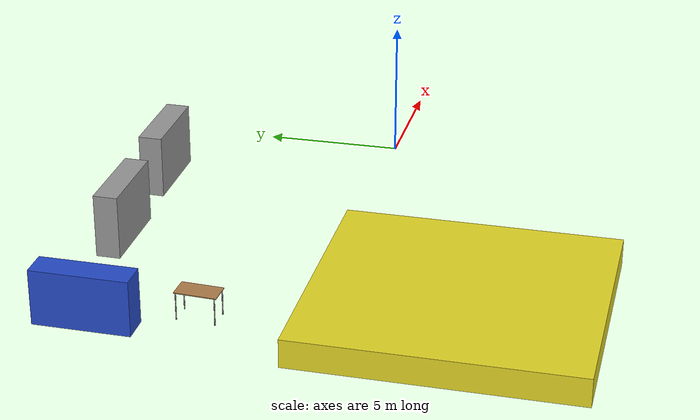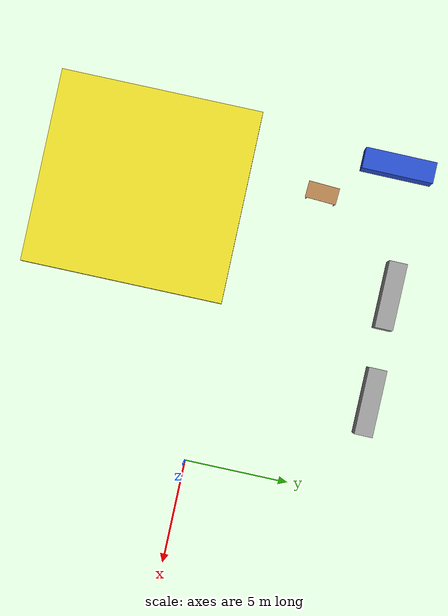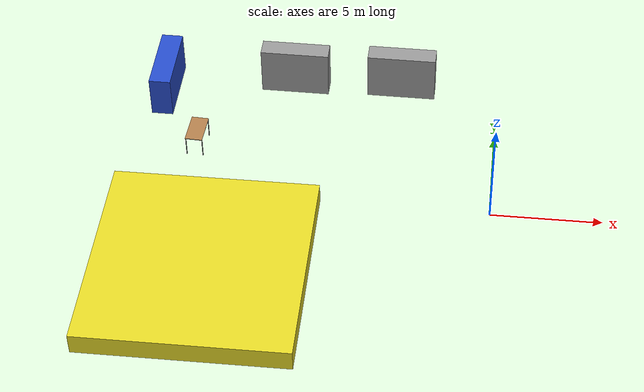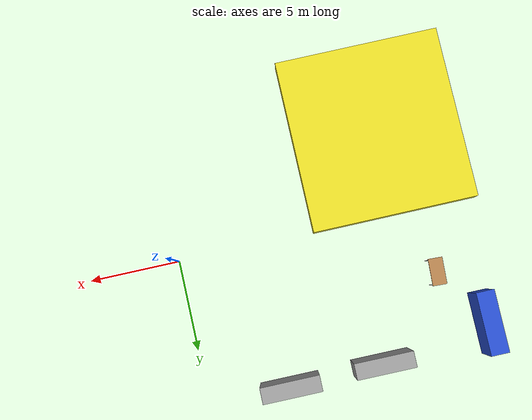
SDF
<sdf version="1.7">
 <world name="lab_arm_world">
  <model name="ground_plane">
   <static>1</static>
   <link name="link_ground_plane">
    <collision name="collision">
     <geometry><plane><normal>0 0 1</normal><size>10 10</size></plane></geometry>
    </collision>
   </link>
  </model>
  <model name="Table">
   <static>1</static>
   <link name="link">
    <collision name="surface">
     <pose>0 0 1 0 -0 0</pose>
     <geometry><box><size>1.5 0.8 0.03</size></box></geometry>
     <surface><friction><ode><mu>0.6</mu><mu2>0.6</mu2></ode></friction></surface>
    </collision>
    <visual name="visual1">
     <pose>0 0 1 0 -0 0</pose>
     <geometry><box><size>1.5 0.8 0.03</size></box></geometry>
     <material>
      <diffuse>1 1 1 1</diffuse>
      <script><uri>file://media/materials/scripts/gazebo.material</uri><name>Gazebo/Wood</name></script>
      <pbr>
       <metal>
        <albedo_map>https://fuel.ignitionrobotics.org/1.0/openrobotics/models/table/4/files/Table_Diffuse.jpg</albedo_map>
       </metal>
      </pbr>
     </material>
    </visual>
    <collision name="front_left_leg">
     <pose>0.68 0.38 0.5 0 -0 0</pose>
     <geometry><cylinder><radius>0.02</radius><length>1</length></cylinder></geometry>
    </collision>
    <visual name="front_left_leg">
     <pose>0.68 0.38 0.5 0 -0 0</pose>
     <geometry><cylinder><radius>0.02</radius><length>1</length></cylinder></geometry>
     <material>
      <diffuse>0.5 0.5 0.5 1</diffuse>
      <script><uri>file://media/materials/scripts/gazebo.material</uri><name>Gazebo/Grey</name></script>
     </material>
    </visual>
    <collision name="front_right_leg">
     <pose>0.68 -0.38 0.5 0 -0 0</pose>
     <geometry><cylinder><radius>0.02</radius><length>1</length></cylinder></geometry>
    </collision>
    <visual name="front_right_leg">
     <pose>0.68 -0.38 0.5 0 -0 0</pose>
     <geometry><cylinder><radius>0.02</radius><length>1</length></cylinder></geometry>
     <material>
      <diffuse>0.5 0.5 0.5 1</diffuse>
      <script><uri>file://media/materials/scripts/gazebo.material</uri><name>Gazebo/Grey</name></script>
     </material>
    </visual>
    <collision name="back_right_leg">
     <pose>-0.68 -0.38 0.5 0 -0 0</pose>
     <geometry><cylinder><radius>0.02</radius><length>1</length></cylinder></geometry>
    </collision>
    <visual name="back_right_leg">
     <pose>-0.68 -0.38 0.5 0 -0 0</pose>
     <geometry><cylinder><radius>0.02</radius><length>1</length></cylinder></geometry>
     <material>
      <diffuse>0.5 0.5 0.5 1</diffuse>
      <script><uri>file://media/materials/scripts/gazebo.material</uri><name>Gazebo/Grey</name></script>
     </material>
    </visual>
    <collision name="back_left_leg">
     <pose>-0.68 0.38 0.5 0 -0 0</pose>
     <geometry><cylinder><radius>0.02</radius><length>1</length></cylinder></geometry>
    </collision>
    <visual name="back_left_leg">
     <pose>-0.68 0.38 0.5 0 -0 0</pose>
     <geometry><cylinder><radius>0.02</radius><length>1</length></cylinder></geometry>
     <material>
      <diffuse>0.5 0.5 0.5 1</diffuse>
      <script><uri>file://media/materials/scripts/gazebo.material</uri><name>Gazebo/Grey</name></script>
     </material>
    </visual>
   </link>
   <pose>-13.7971 3.69248 -0.41273 0 -0 1.51826</pose>
  </model>
  <model name="working_area">
   <link name="link">
    <inertial>
     <mass>90.2877</mass>
     <inertia><ixx>719.521</ixx><ixy>0</ixy><ixz>0</ixz><iyy>655.672</iyy><iyz>0</iyz><izz>1360.15</izz></inertia>
    </inertial>
    <pose>-0.219399 -1.99254 0 0 -0 0</pose>
    <visual name="visual">
     <geometry><box><size>9.2814 9.72782 1</size></box></geometry>
     <material>
      <script><name>Gazebo/Yellow</name><uri>file://media/materials/scripts/gazebo.material</uri></script>
      <shader type="pixel"><normal_map>__default__</normal_map></shader>
      <ambient>1 1 0 1</ambient>
      <diffuse>1 1 0 1</diffuse>
      <emissive>0 0 0 1</emissive>
     </material>
    </visual>
    <collision name="collision">
     <geometry><box><size>9.2814 9.72782 1</size></box></geometry>
     <surface>
      <friction>
       <ode><mu>1</mu><mu2>1</mu2><fdir1>0 0 0</fdir1><slip1>0</slip1><slip2>0</slip2></ode>
       <torsional>
        <coefficient>1</coefficient>
        <patch_radius>0</patch_radius>
        <surface_radius>0</surface_radius>
        <use_patch_radius>1</use_patch_radius>
        <ode><slip>0</slip></ode>
       </torsional>
      </friction>
      <bounce><restitution_coefficient>0</restitution_coefficient><threshold>1e+06</threshold></bounce>
      <contact>
       <collide_without_contact>0</collide_without_contact>
       <collide_without_contact_bitmask>1</collide_without_contact_bitmask>
       <collide_bitmask>1</collide_bitmask>
       <ode>
        <soft_cfm>0</soft_cfm>
        <soft_erp>0.2</soft_erp>
        <kp>1e+13</kp>
        <kd>1</kd>
        <max_vel>0.01</max_vel>
        <min_depth>0</min_depth>
       </ode>
       <bullet>
        <split_impulse>1</split_impulse>
        <split_impulse_penetration_threshold>-0.01</split_impulse_penetration_threshold>
        <soft_cfm>0</soft_cfm>
        <soft_erp>0.2</soft_erp>
        <kp>1e+13</kp>
        <kd>1</kd>
       </bullet>
      </contact>
     </surface>
    </collision>
   </link>
   <static>0</static>
   <pose>-12.0475 -2.74328 0.5 0 -0 0</pose>
  </model>
  <model name="storage_0_clone_clone">
   <link name="link">
    <inertial>
     <mass>1</mass>
     <inertia>
      <ixx>0.166667</ixx>
      <ixy>0</ixy>
      <ixz>0</ixz>
      <iyy>0.166667</iyy>
      <iyz>0</iyz>
      <izz>0.166667</izz>
     </inertia>
    </inertial>
    <visual name="visual">
     <geometry><box><size>1 3.40324 1.97816</size></box></geometry>
     <material>
      <script><name>Gazebo/Blue</name><uri>file://media/materials/scripts/gazebo.material</uri></script>
      <shader type="pixel"><normal_map>__default__</normal_map></shader>
      <ambient>0 0 1 1</ambient>
      <diffuse>0 0 1 1</diffuse>
      <specular>0.1 0.1 0.1 1</specular>
      <emissive>0 0 0 1</emissive>
     </material>
    </visual>
    <collision name="collision">
     <geometry><box><size>1 3.40324 1.97816</size></box></geometry>
     <surface>
      <friction>
       <ode><mu>1</mu><mu2>1</mu2><fdir1>0 0 0</fdir1><slip1>0</slip1><slip2>0</slip2></ode>
       <torsional>
        <coefficient>1</coefficient>
        <patch_radius>0</patch_radius>
        <surface_radius>0</surface_radius>
        <use_patch_radius>1</use_patch_radius>
        <ode><slip>0</slip></ode>
       </torsional>
      </friction>
      <bounce><restitution_coefficient>0</restitution_coefficient><threshold>1e+06</threshold></bounce>
      <contact>
       <collide_without_contact>0</collide_without_contact>
       <collide_without_contact_bitmask>1</collide_without_contact_bitmask>
       <collide_bitmask>1</collide_bitmask>
       <ode>
        <soft_cfm>0</soft_cfm>
        <soft_erp>0.2</soft_erp>
        <kp>1e+13</kp>
        <kd>1</kd>
        <max_vel>0.01</max_vel>
        <min_depth>0</min_depth>
       </ode>
       <bullet>
        <split_impulse>1</split_impulse>
        <split_impulse_penetration_threshold>-0.01</split_impulse_penetration_threshold>
        <soft_cfm>0</soft_cfm>
        <soft_erp>0.2</soft_erp>
        <kp>1e+13</kp>
        <kd>1</kd>
       </bullet>
      </contact>
     </surface>
    </collision>
   </link>
   <static>0</static>
   <pose>-15.7285 6.92158 0.989072 5e-06 0 -0.005039</pose>
  </model>
  <model name="stage_1_clone_clone_clone">
   <link name="link">
    <inertial>
     <mass>260.037</mass>
     <inertia><ixx>35.3694</ixx><ixy>0</ixy><ixz>0</ixz><iyy>240.548</iyy><iyz>0</iyz><izz>237.704</izz></inertia>
    </inertial>
    <self_collide>1</self_collide>
    <visual name="visual">
     <geometry><box><size>3.1967 0.866292 2.31271</size></box></geometry>
     <material>
      <script><name>Gazebo/Grey</name><uri>file://media/materials/scripts/gazebo.material</uri></script>
      <shader type="pixel"><normal_map>__default__</normal_map></shader>
      <ambient>0 0 0 1</ambient>
      <diffuse>0 0 0 1</diffuse>
      <specular>0.1 0.1 0.1 1</specular>
      <emissive>0 0 0 1</emissive>
     </material>
    </visual>
    <collision name="collision">
     <geometry><box><size>3.1967 0.866292 2.31271</size></box></geometry>
     <surface>
      <friction>
       <ode><mu>1</mu><mu2>1</mu2><fdir1>0 0 0</fdir1><slip1>0</slip1><slip2>0</slip2></ode>
       <torsional>
        <coefficient>1</coefficient>
        <patch_radius>0</patch_radius>
        <surface_radius>0</surface_radius>
        <use_patch_radius>1</use_patch_radius>
        <ode><slip>0</slip></ode>
       </torsional>
      </friction>
      <bounce><restitution_coefficient>0</restitution_coefficient><threshold>1e+06</threshold></bounce>
      <contact>
       <collide_without_contact>0</collide_without_contact>
       <collide_without_contact_bitmask>1</collide_without_contact_bitmask>
       <collide_bitmask>1</collide_bitmask>
       <ode>
        <soft_cfm>0</soft_cfm>
        <soft_erp>0.2</soft_erp>
        <kp>1e+13</kp>
        <kd>1</kd>
        <max_vel>0.01</max_vel>
        <min_depth>0</min_depth>
       </ode>
       <bullet>
        <split_impulse>1</split_impulse>
        <split_impulse_penetration_threshold>-0.01</split_impulse_penetration_threshold>
        <soft_cfm>0</soft_cfm>
        <soft_erp>0.2</soft_erp>
        <kp>1e+13</kp>
        <kd>1</kd>
       </bullet>
      </contact>
     </surface>
    </collision>
   </link>
   <static>0</static>
   <pose>-9.64956 7.80615 1.15636 0 -0 3.13355</pose>
  </model>
  <model name="stage_1_clone_clone_clone_clone">
   <link name="link">
    <inertial>
     <mass>260.037</mass>
     <inertia><ixx>35.3694</ixx><ixy>0</ixy><ixz>0</ixz><iyy>240.548</iyy><iyz>0</iyz><izz>237.704</izz></inertia>
    </inertial>
    <self_collide>1</self_collide>
    <visual name="visual">
     <geometry><box><size>3.1967 0.866292 2.31271</size></box></geometry>
     <material>
      <script><name>Gazebo/Grey</name><uri>file://media/materials/scripts/gazebo.material</uri></script>
      <shader type="pixel"><normal_map>__default__</normal_map></shader>
      <ambient>0 0 0 1</ambient>
      <diffuse>0 0 0 1</diffuse>
      <specular>0.1 0.1 0.1 1</specular>
      <emissive>0 0 0 1</emissive>
     </material>
    </visual>
    <collision name="collision">
     <geometry><box><size>3.1967 0.866292 2.31271</size></box></geometry>
     <surface>
      <friction>
       <ode><mu>1</mu><mu2>1</mu2><fdir1>0 0 0</fdir1><slip1>0</slip1><slip2>0</slip2></ode>
       <torsional>
        <coefficient>1</coefficient>
        <patch_radius>0</patch_radius>
        <surface_radius>0</surface_radius>
        <use_patch_radius>1</use_patch_radius>
        <ode><slip>0</slip></ode>
       </torsional>
      </friction>
      <bounce><restitution_coefficient>0</restitution_coefficient><threshold>1e+06</threshold></bounce>
      <contact>
       <collide_without_contact>0</collide_without_contact>
       <collide_without_contact_bitmask>1</collide_without_contact_bitmask>
       <collide_bitmask>1</collide_bitmask>
       <ode>
        <soft_cfm>0</soft_cfm>
        <soft_erp>0.2</soft_erp>
        <kp>1e+13</kp>
        <kd>1</kd>
        <max_vel>0.01</max_vel>
        <min_depth>0</min_depth>
       </ode>
       <bullet>
        <split_impulse>1</split_impulse>
        <split_impulse_penetration_threshold>-0.01</split_impulse_penetration_threshold>
        <soft_cfm>0</soft_cfm>
        <soft_erp>0.2</soft_erp>
        <kp>1e+13</kp>
        <kd>1</kd>
       </bullet>
      </contact>
     </surface>
    </collision>
   </link>
   <static>0</static>
   <pose>-4.58216 7.93133 1.15636 0 -0 3.13452</pose>
  </model>
 </world>
</sdf>
